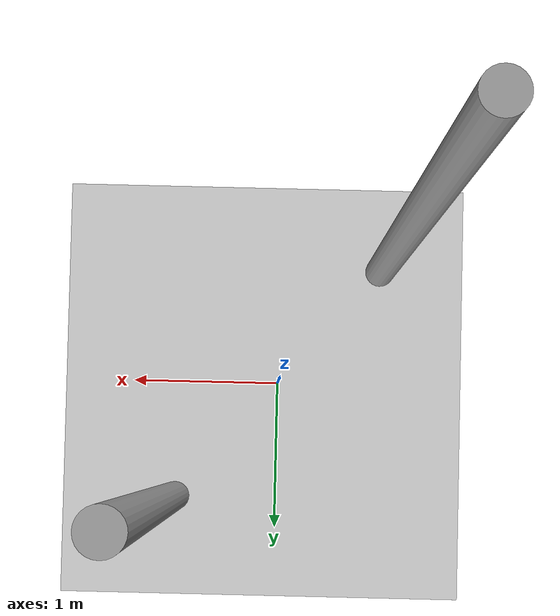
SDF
<sdf version="1.7">
 <world name="default">
  <include><uri>model://sun</uri></include>
  <include><uri>model://ground_plane</uri></include>
  <gravity>0 0 -9.8</gravity>
  <magnetic_field>6e-06 2.3e-05 -4.2e-05</magnetic_field>
  <atmosphere type="adiabatic"/>
  <physics type="ode">
   <max_step_size>0.001</max_step_size>
   <real_time_factor>1</real_time_factor>
   <real_time_update_rate>1000</real_time_update_rate>
  </physics>
  <scene><ambient>0.4 0.4 0.4 1</ambient><background>0.7 0.7 0.7 1</background><shadows>1</shadows></scene>
  <spherical_coordinates>
   <surface_model>EARTH_WGS84</surface_model>
   <latitude_deg>0</latitude_deg>
   <longitude_deg>0</longitude_deg>
   <elevation>0</elevation>
   <heading_deg>0</heading_deg>
  </spherical_coordinates>
  <model name="unit_cylinder">
   <link name="link">
    <inertial>
     <mass>1</mass>
     <inertia><ixx>0.145833</ixx><ixy>0</ixy><ixz>0</ixz><iyy>0.145833</iyy><iyz>0</iyz><izz>0.125</izz></inertia>
    </inertial>
    <gravity>0</gravity>
    <visual name="visual">
     <geometry><cylinder><radius>0.1</radius><length>5</length></cylinder></geometry>
     <material>
      <script><name>Gazebo/Grey</name><uri>file://media/materials/scripts/gazebo.material</uri></script>
      <shader type="pixel"><normal_map>__default__</normal_map></shader>
      <ambient>0.3 0.3 0.3 1</ambient>
      <diffuse>0.7 0.7 0.7 1</diffuse>
      <specular>0.01 0.01 0.01 1</specular>
      <emissive>0 0 0 1</emissive>
     </material>
    </visual>
    <collision name="collision">
     <laser_retro>0.5</laser_retro>
     <geometry><cylinder><radius>0.1</radius><length>5</length></cylinder></geometry>
     <surface>
      <friction>
       <ode><mu>1</mu><mu2>1</mu2><fdir1>0 0 0</fdir1><slip1>0</slip1><slip2>0</slip2></ode>
       <torsional>
        <coefficient>1</coefficient>
        <patch_radius>0</patch_radius>
        <surface_radius>0</surface_radius>
        <use_patch_radius>1</use_patch_radius>
        <ode><slip>0</slip></ode>
       </torsional>
      </friction>
      <bounce><restitution_coefficient>0</restitution_coefficient><threshold>1e+06</threshold></bounce>
      <contact>
       <collide_without_contact>0</collide_without_contact>
       <collide_without_contact_bitmask>1</collide_without_contact_bitmask>
       <collide_bitmask>1</collide_bitmask>
       <ode>
        <soft_cfm>0</soft_cfm>
        <soft_erp>0.2</soft_erp>
        <kp>1e+13</kp>
        <kd>1</kd>
        <max_vel>0</max_vel>
        <min_depth>0</min_depth>
       </ode>
       <bullet>
        <split_impulse>1</split_impulse>
        <split_impulse_penetration_threshold>-0.01</split_impulse_penetration_threshold>
        <soft_cfm>0</soft_cfm>
        <soft_erp>0.2</soft_erp>
        <kp>1e+13</kp>
        <kd>1</kd>
       </bullet>
      </contact>
     </surface>
    </collision>
   </link>
   <static>1</static>
   <pose>0.7 0.8 2.5 0 -0 0</pose>
  </model>
  <model name="unit_cylinder_clone">
   <link name="link">
    <inertial>
     <mass>1</mass>
     <inertia><ixx>0.145833</ixx><ixy>0</ixy><ixz>0</ixz><iyy>0.145833</iyy><iyz>0</iyz><izz>0.125</izz></inertia>
    </inertial>
    <gravity>0</gravity>
    <visual name="visual">
     <geometry><cylinder><radius>0.1</radius><length>5</length></cylinder></geometry>
     <material>
      <script><name>Gazebo/Grey</name><uri>file://media/materials/scripts/gazebo.material</uri></script>
      <shader type="pixel"><normal_map>__default__</normal_map></shader>
      <ambient>0.3 0.3 0.3 1</ambient>
      <diffuse>0.7 0.7 0.7 1</diffuse>
      <specular>0.01 0.01 0.01 1</specular>
      <emissive>0 0 0 1</emissive>
     </material>
    </visual>
    <collision name="collision">
     <laser_retro>0.5</laser_retro>
     <geometry><cylinder><radius>0.1</radius><length>5</length></cylinder></geometry>
     <surface>
      <friction>
       <ode><mu>1</mu><mu2>1</mu2><fdir1>0 0 0</fdir1><slip1>0</slip1><slip2>0</slip2></ode>
       <torsional>
        <coefficient>1</coefficient>
        <patch_radius>0</patch_radius>
        <surface_radius>0</surface_radius>
        <use_patch_radius>1</use_patch_radius>
        <ode><slip>0</slip></ode>
       </torsional>
      </friction>
      <bounce><restitution_coefficient>0</restitution_coefficient><threshold>1e+06</threshold></bounce>
      <contact>
       <collide_without_contact>0</collide_without_contact>
       <collide_without_contact_bitmask>1</collide_without_contact_bitmask>
       <collide_bitmask>1</collide_bitmask>
       <ode>
        <soft_cfm>0</soft_cfm>
        <soft_erp>0.2</soft_erp>
        <kp>1e+13</kp>
        <kd>1</kd>
        <max_vel>0</max_vel>
        <min_depth>0</min_depth>
       </ode>
       <bullet>
        <split_impulse>1</split_impulse>
        <split_impulse_penetration_threshold>-0.01</split_impulse_penetration_threshold>
        <soft_cfm>0</soft_cfm>
        <soft_erp>0.2</soft_erp>
        <kp>1e+13</kp>
        <kd>1</kd>
       </bullet>
      </contact>
     </surface>
    </collision>
   </link>
   <static>1</static>
   <pose>-0.7 -0.8 2.5 0 -0 0</pose>
  </model>
 </world>
</sdf>
